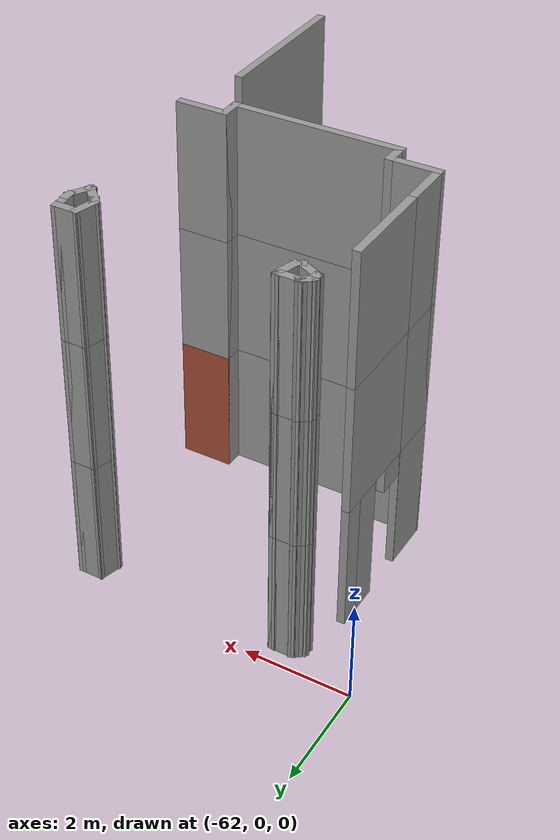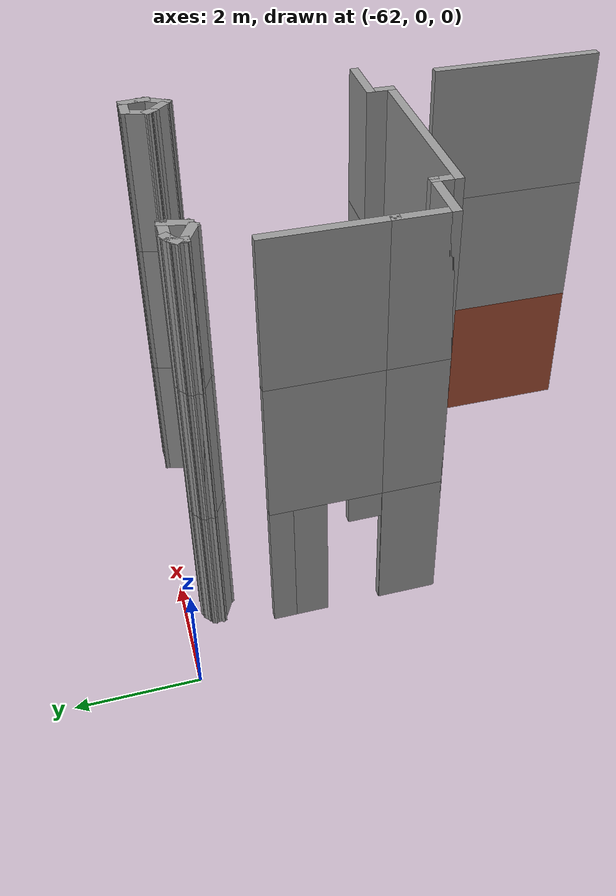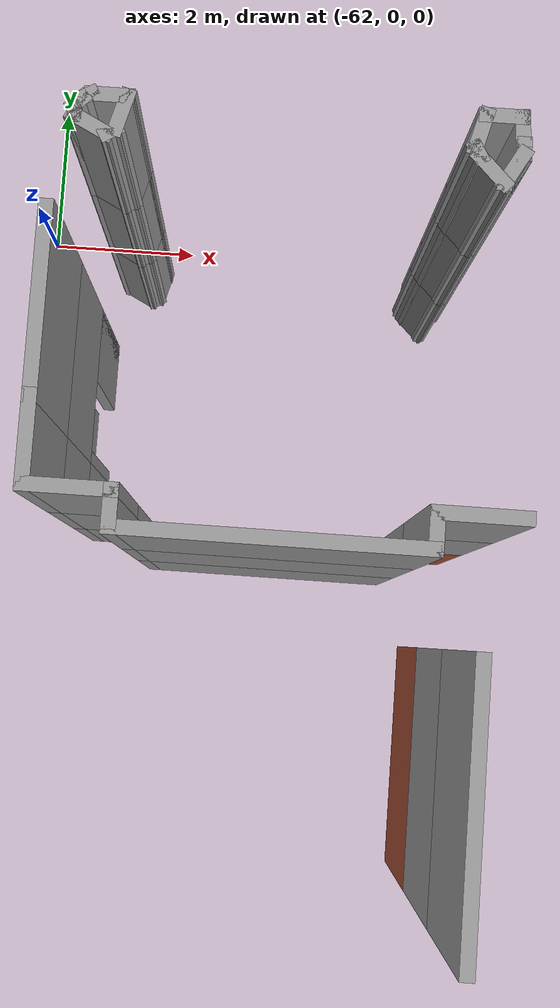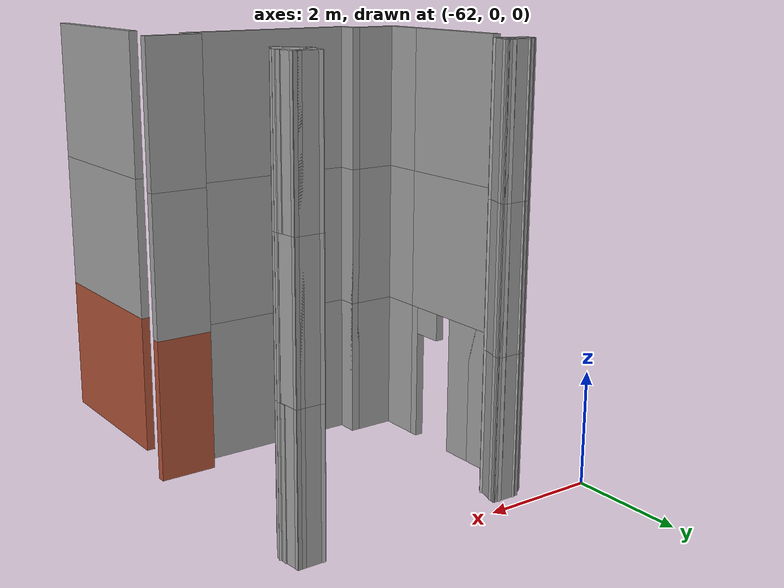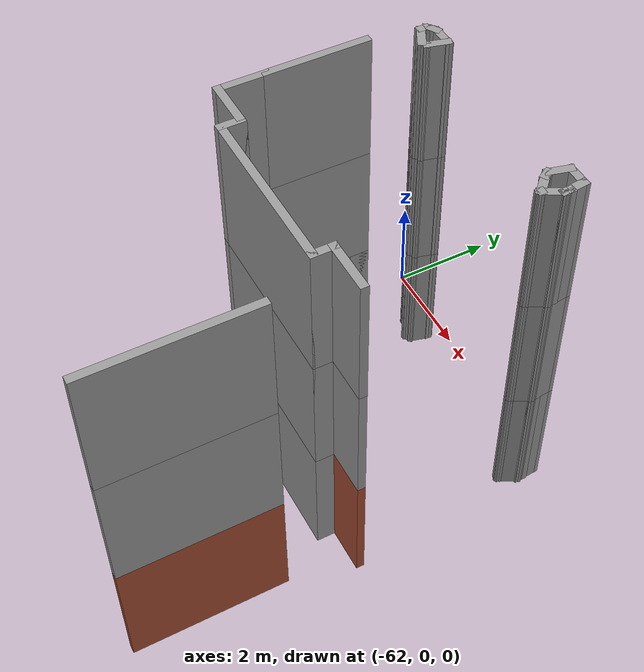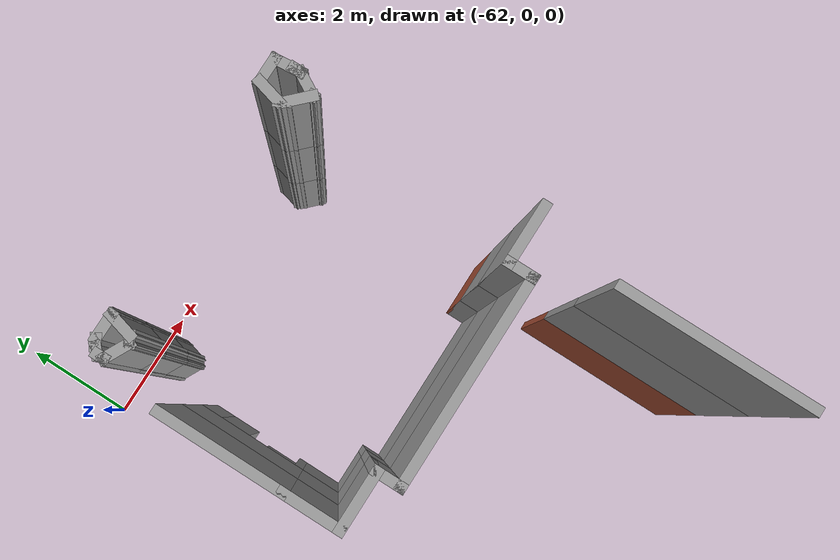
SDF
<sdf version="1.7">
 <model name="mapagazebo">
  <pose>-4.67869 9.01252 0 0 -0 0</pose>
  <link name="Wall_100">
   <collision name="Wall_100_Collision">
    <geometry><box><size>0.5 0.15 2.5</size></box></geometry>
    <pose>0 0 1.25 0 -0 0</pose>
   </collision>
   <visual name="Wall_100_Visual">
    <pose>0 0 1.25 0 -0 0</pose>
    <geometry><box><size>0.5 0.15 2.5</size></box></geometry>
    <material>
     <script><uri>file://media/materials/scripts/gazebo.material</uri><name>Gazebo/Grey</name></script>
     <ambient>1 1 1 1</ambient>
    </material>
    <meta><layer>0</layer></meta>
   </visual>
   <pose>-55.5249 -13.3911 0 0 -0 1.5708</pose>
  </link>
  <link name="Wall_101">
   <collision name="Wall_101_Collision">
    <geometry><box><size>1 0.15 2.5</size></box></geometry>
    <pose>0 0 1.25 0 -0 0</pose>
   </collision>
   <visual name="Wall_101_Visual">
    <pose>0 0 1.25 0 -0 0</pose>
    <geometry><box><size>1 0.15 2.5</size></box></geometry>
    <material>
     <script><uri>file://media/materials/scripts/gazebo.material</uri><name>Gazebo/Grey</name></script>
     <ambient>1 1 1 1</ambient>
    </material>
    <meta><layer>0</layer></meta>
   </visual>
   <pose>-55.9499 -13.2161 0 0 -0 3.14159</pose>
  </link>
  <link name="Wall_102">
   <collision name="Wall_102_Collision">
    <geometry><box><size>1 0.15 2.5</size></box></geometry>
    <pose>0 0 1.25 0 -0 0</pose>
   </collision>
   <visual name="Wall_102_Visual">
    <pose>0 0 1.25 0 -0 0</pose>
    <geometry><box><size>1 0.15 2.5</size></box></geometry>
    <material>
     <script><uri>file://media/materials/scripts/gazebo.material</uri><name>Gazebo/Grey</name></script>
     <ambient>1 1 1 1</ambient>
    </material>
    <meta><layer>0</layer></meta>
   </visual>
   <pose>-56.3749 -12.7911 0 0 -0 1.5708</pose>
  </link>
  <link name="Wall_103">
   <pose>-56.3749 -11.4411 0 0 -0 1.5708</pose>
   <visual name="Wall_103_Visual_0">
    <pose>-0.92124 0 1.25 0 -0 0</pose>
    <geometry><box><size>0.157519 0.15 2.5</size></box></geometry>
    <material>
     <script><uri>file://media/materials/scripts/gazebo.material</uri><name>Gazebo/Grey</name></script>
     <ambient>1 1 1 1</ambient>
    </material>
    <meta><layer>0</layer></meta>
   </visual>
   <collision name="Wall_103_Collision_0">
    <geometry><box><size>0.157519 0.15 2.5</size></box></geometry>
    <pose>-0.92124 0 1.25 0 -0 0</pose>
   </collision>
   <visual name="Wall_103_Visual_1">
    <pose>0.52876 0 1.25 0 -0 0</pose>
    <geometry><box><size>0.942481 0.15 2.5</size></box></geometry>
    <material>
     <script><uri>file://media/materials/scripts/gazebo.material</uri><name>Gazebo/Grey</name></script>
     <ambient>1 1 1 1</ambient>
    </material>
    <meta><layer>0</layer></meta>
   </visual>
   <collision name="Wall_103_Collision_1">
    <geometry><box><size>0.942481 0.15 2.5</size></box></geometry>
    <pose>0.52876 0 1.25 0 -0 0</pose>
   </collision>
   <visual name="Wall_103_Visual_2">
    <pose>0.804239 0 1.25 0 -0 0</pose>
    <geometry><box><size>0.391522 0.15 2.5</size></box></geometry>
    <material>
     <script><uri>file://media/materials/scripts/gazebo.material</uri><name>Gazebo/Grey</name></script>
     <ambient>1 1 1 1</ambient>
    </material>
    <meta><layer>0</layer></meta>
   </visual>
   <collision name="Wall_103_Collision_2">
    <geometry><box><size>0.391522 0.15 2.5</size></box></geometry>
    <pose>0.804239 0 1.25 0 -0 0</pose>
   </collision>
   <visual name="Wall_103_Visual_3">
    <pose>-0.567001 0 2.25 0 -0 0</pose>
    <geometry><box><size>0.550959 0.15 0.5</size></box></geometry>
    <material>
     <script><uri>file://media/materials/scripts/gazebo.material</uri><name>Gazebo/Grey</name></script>
     <ambient>1 1 1 1</ambient>
    </material>
    <meta><layer>0</layer></meta>
   </visual>
   <collision name="Wall_103_Collision_3">
    <geometry><box><size>0.550959 0.15 0.5</size></box></geometry>
    <pose>-0.567001 0 2.25 0 -0 0</pose>
   </collision>
  </link>
  <link name="Wall_1045">
   <collision name="Wall_1045_Collision">
    <geometry><box><size>0.25 0.15 2.5</size></box></geometry>
    <pose>0 0 1.25 0 -0 0</pose>
   </collision>
   <visual name="Wall_1045_Visual">
    <pose>0 0 1.25 0 -0 0</pose>
    <geometry><box><size>0.25 0.15 2.5</size></box></geometry>
    <material>
     <script><uri>file://media/materials/scripts/gazebo.material</uri><name>Gazebo/Grey</name></script>
     <ambient>1 1 1 1</ambient>
    </material>
    <meta><layer>1</layer></meta>
   </visual>
   <pose>-56.1822 -9.53536 2.5 0 -0 1.5708</pose>
  </link>
  <link name="Wall_1046">
   <collision name="Wall_1046_Collision">
    <geometry><box><size>0.25 0.15 2.5</size></box></geometry>
    <pose>0 0 1.25 0 -0 0</pose>
   </collision>
   <visual name="Wall_1046_Visual">
    <pose>0 0 1.25 0 -0 0</pose>
    <geometry><box><size>0.25 0.15 2.5</size></box></geometry>
    <material>
     <script><uri>file://media/materials/scripts/gazebo.material</uri><name>Gazebo/Grey</name></script>
     <ambient>1 1 1 1</ambient>
    </material>
    <meta><layer>1</layer></meta>
   </visual>
   <pose>-56.1468 -9.45001 2.5 0 -0 0.785398</pose>
  </link>
  <link name="Wall_1047">
   <collision name="Wall_1047_Collision">
    <geometry><box><size>0.25 0.15 2.5</size></box></geometry>
    <pose>0 0 1.25 0 -0 0</pose>
   </collision>
   <visual name="Wall_1047_Visual">
    <pose>0 0 1.25 0 -0 0</pose>
    <geometry><box><size>0.25 0.15 2.5</size></box></geometry>
    <material>
     <script><uri>file://media/materials/scripts/gazebo.material</uri><name>Gazebo/Grey</name></script>
     <ambient>1 1 1 1</ambient>
    </material>
    <meta><layer>1</layer></meta>
   </visual>
   <pose>-56.0682 -9.38965 2.5 0 -0 0.523599</pose>
  </link>
  <link name="Wall_1048">
   <collision name="Wall_1048_Collision">
    <geometry><box><size>0.5 0.15 2.5</size></box></geometry>
    <pose>0 0 1.25 0 -0 0</pose>
   </collision>
   <visual name="Wall_1048_Visual">
    <pose>0 0 1.25 0 -0 0</pose>
    <geometry><box><size>0.5 0.15 2.5</size></box></geometry>
    <material>
     <script><uri>file://media/materials/scripts/gazebo.material</uri><name>Gazebo/Grey</name></script>
     <ambient>1 1 1 1</ambient>
    </material>
    <meta><layer>1</layer></meta>
   </visual>
   <pose>-55.8499 -9.36465 2.5 0 -0 0</pose>
  </link>
  <link name="Wall_1049">
   <collision name="Wall_1049_Collision">
    <geometry><box><size>0.15 0.15 2.5</size></box></geometry>
    <pose>0 0 1.25 0 -0 0</pose>
   </collision>
   <visual name="Wall_1049_Visual">
    <pose>0 0 1.25 0 -0 0</pose>
    <geometry><box><size>0.15 0.15 2.5</size></box></geometry>
    <material>
     <script><uri>file://media/materials/scripts/gazebo.material</uri><name>Gazebo/Grey</name></script>
     <ambient>1 1 1 1</ambient>
    </material>
    <meta><layer>1</layer></meta>
   </visual>
   <pose>-55.6749 -9.36465 2.5 0 -0 0</pose>
  </link>
  <link name="Wall_1050">
   <collision name="Wall_1050_Collision">
    <geometry><box><size>0.5 0.15 2.5</size></box></geometry>
    <pose>0 0 1.25 0 -0 0</pose>
   </collision>
   <visual name="Wall_1050_Visual">
    <pose>0 0 1.25 0 -0 0</pose>
    <geometry><box><size>0.5 0.15 2.5</size></box></geometry>
    <material>
     <script><uri>file://media/materials/scripts/gazebo.material</uri><name>Gazebo/Grey</name></script>
     <ambient>1 1 1 1</ambient>
    </material>
    <meta><layer>1</layer></meta>
   </visual>
   <pose>-55.7202 -9.53369 2.5 0 -0 -1.8326</pose>
  </link>
  <link name="Wall_1051">
   <collision name="Wall_1051_Collision">
    <geometry><box><size>0.25 0.15 2.5</size></box></geometry>
    <pose>0 0 1.25 0 -0 0</pose>
   </collision>
   <visual name="Wall_1051_Visual">
    <pose>0 0 1.25 0 -0 0</pose>
    <geometry><box><size>0.25 0.15 2.5</size></box></geometry>
    <material>
     <script><uri>file://media/materials/scripts/gazebo.material</uri><name>Gazebo/Grey</name></script>
     <ambient>1 1 1 1</ambient>
    </material>
    <meta><layer>1</layer></meta>
   </visual>
   <pose>-55.8088 -9.72772 2.5 0 -0 -2.61799</pose>
  </link>
  <link name="Wall_1052">
   <collision name="Wall_1052_Collision">
    <geometry><box><size>0.520125 0.15 2.5</size></box></geometry>
    <pose>0 0 1.25 0 -0 0</pose>
   </collision>
   <visual name="Wall_1052_Visual">
    <pose>0 0 1.25 0 -0 0</pose>
    <geometry><box><size>0.520125 0.15 2.5</size></box></geometry>
    <material>
     <script><uri>file://media/materials/scripts/gazebo.material</uri><name>Gazebo/Grey</name></script>
     <ambient>1 1 1 1</ambient>
    </material>
    <meta><layer>1</layer></meta>
   </visual>
   <pose>-56.0171 -9.66904 2.5 0 -0 2.67238</pose>
  </link>
  <link name="Wall_1053">
   <collision name="Wall_1053_Collision">
    <geometry><box><size>0.15 0.15 2.5</size></box></geometry>
    <pose>0 0 1.25 0 -0 0</pose>
   </collision>
   <visual name="Wall_1053_Visual">
    <pose>0 0 1.25 0 -0 0</pose>
    <geometry><box><size>0.15 0.15 2.5</size></box></geometry>
    <material>
     <script><uri>file://media/materials/scripts/gazebo.material</uri><name>Gazebo/Grey</name></script>
     <ambient>1 1 1 1</ambient>
    </material>
    <meta><layer>1</layer></meta>
   </visual>
   <pose>-56.1822 -9.58536 2.5 0 -0 0</pose>
  </link>
  <link name="Wall_1464">
   <collision name="Wall_1464_Collision">
    <geometry><box><size>3 0.15 2.5</size></box></geometry>
    <pose>0 0 1.25 0 -0 0</pose>
   </collision>
   <visual name="Wall_1464_Visual">
    <pose>0 0 1.25 0 -0 0</pose>
    <geometry><box><size>3 0.15 2.5</size></box></geometry>
    <material>
     <script><uri>file://media/materials/scripts/gazebo.material</uri><name>Gazebo/Grey</name></script>
     <ambient>1 1 1 1</ambient>
    </material>
    <meta><layer>2</layer></meta>
   </visual>
   <pose>-51.9249 -15.9911 5 0 -0 1.5708</pose>
  </link>
  <link name="Wall_1467">
   <collision name="Wall_1467_Collision">
    <geometry><box><size>1 0.15 2.5</size></box></geometry>
    <pose>0 0 1.25 0 -0 0</pose>
   </collision>
   <visual name="Wall_1467_Visual">
    <pose>0 0 1.25 0 -0 0</pose>
    <geometry><box><size>1 0.15 2.5</size></box></geometry>
    <material>
     <script><uri>file://media/materials/scripts/gazebo.material</uri><name>Gazebo/Grey</name></script>
     <ambient>1 1 1 1</ambient>
    </material>
    <meta><layer>2</layer></meta>
   </visual>
   <pose>-51.9999 -13.2161 5 0 -0 3.14159</pose>
  </link>
  <link name="Wall_1468">
   <collision name="Wall_1468_Collision">
    <geometry><box><size>0.5 0.15 2.5</size></box></geometry>
    <pose>0 0 1.25 0 -0 0</pose>
   </collision>
   <visual name="Wall_1468_Visual">
    <pose>0 0 1.25 0 -0 0</pose>
    <geometry><box><size>0.5 0.15 2.5</size></box></geometry>
    <material>
     <script><uri>file://media/materials/scripts/gazebo.material</uri><name>Gazebo/Grey</name></script>
     <ambient>1 1 1 1</ambient>
    </material>
    <meta><layer>2</layer></meta>
   </visual>
   <pose>-52.4249 -13.3911 5 0 -0 -1.5708</pose>
  </link>
  <link name="Wall_1469">
   <collision name="Wall_1469_Collision">
    <geometry><box><size>3.25 0.15 2.5</size></box></geometry>
    <pose>0 0 1.25 0 -0 0</pose>
   </collision>
   <visual name="Wall_1469_Visual">
    <pose>0 0 1.25 0 -0 0</pose>
    <geometry><box><size>3.25 0.15 2.5</size></box></geometry>
    <material>
     <script><uri>file://media/materials/scripts/gazebo.material</uri><name>Gazebo/Grey</name></script>
     <ambient>1 1 1 1</ambient>
    </material>
    <meta><layer>2</layer></meta>
   </visual>
   <pose>-53.9749 -13.5661 5 0 -0 3.14159</pose>
  </link>
  <link name="Wall_1470">
   <collision name="Wall_1470_Collision">
    <geometry><box><size>0.5 0.15 2.5</size></box></geometry>
    <pose>0 0 1.25 0 -0 0</pose>
   </collision>
   <visual name="Wall_1470_Visual">
    <pose>0 0 1.25 0 -0 0</pose>
    <geometry><box><size>0.5 0.15 2.5</size></box></geometry>
    <material>
     <script><uri>file://media/materials/scripts/gazebo.material</uri><name>Gazebo/Grey</name></script>
     <ambient>1 1 1 1</ambient>
    </material>
    <meta><layer>2</layer></meta>
   </visual>
   <pose>-55.5249 -13.3911 5 0 -0 1.5708</pose>
  </link>
  <link name="Wall_1471">
   <collision name="Wall_1471_Collision">
    <geometry><box><size>1 0.15 2.5</size></box></geometry>
    <pose>0 0 1.25 0 -0 0</pose>
   </collision>
   <visual name="Wall_1471_Visual">
    <pose>0 0 1.25 0 -0 0</pose>
    <geometry><box><size>1 0.15 2.5</size></box></geometry>
    <material>
     <script><uri>file://media/materials/scripts/gazebo.material</uri><name>Gazebo/Grey</name></script>
     <ambient>1 1 1 1</ambient>
    </material>
    <meta><layer>2</layer></meta>
   </visual>
   <pose>-55.9499 -13.2161 5 0 -0 3.14159</pose>
  </link>
  <link name="Wall_1472">
   <collision name="Wall_1472_Collision">
    <geometry><box><size>1 0.15 2.5</size></box></geometry>
    <pose>0 0 1.25 0 -0 0</pose>
   </collision>
   <visual name="Wall_1472_Visual">
    <pose>0 0 1.25 0 -0 0</pose>
    <geometry><box><size>1 0.15 2.5</size></box></geometry>
    <material>
     <script><uri>file://media/materials/scripts/gazebo.material</uri><name>Gazebo/Grey</name></script>
     <ambient>1 1 1 1</ambient>
    </material>
    <meta><layer>2</layer></meta>
   </visual>
   <pose>-56.3749 -12.7911 5 0 -0 1.5708</pose>
  </link>
  <link name="Wall_1473">
   <collision name="Wall_1473_Collision">
    <geometry><box><size>2 0.15 2.5</size></box></geometry>
    <pose>0 0 1.25 0 -0 0</pose>
   </collision>
   <visual name="Wall_1473_Visual">
    <pose>0 0 1.25 0 -0 0</pose>
    <geometry><box><size>2 0.15 2.5</size></box></geometry>
    <material>
     <script><uri>file://media/materials/scripts/gazebo.material</uri><name>Gazebo/Grey</name></script>
     <ambient>1 1 1 1</ambient>
    </material>
    <meta><layer>2</layer></meta>
   </visual>
   <pose>-56.3749 -11.4411 5 0 -0 1.5708</pose>
  </link>
  <link name="Wall_1565">
   <collision name="Wall_1565_Collision">
    <geometry><box><size>0.5 0.15 2.5</size></box></geometry>
    <pose>0 0 1.25 0 -0 0</pose>
   </collision>
   <visual name="Wall_1565_Visual">
    <pose>0 0 1.25 0 -0 0</pose>
    <geometry><box><size>0.5 0.15 2.5</size></box></geometry>
    <material>
     <script><uri>file://media/materials/scripts/gazebo.material</uri><name>Gazebo/Grey</name></script>
     <ambient>1 1 1 1</ambient>
    </material>
    <meta><layer>2</layer></meta>
   </visual>
   <pose>-52.2158 -9.47838 5 0 -0 -1.8326</pose>
  </link>
  <link name="Wall_1566">
   <collision name="Wall_1566_Collision">
    <geometry><box><size>0.25 0.15 2.5</size></box></geometry>
    <pose>0 0 1.25 0 -0 0</pose>
   </collision>
   <visual name="Wall_1566_Visual">
    <pose>0 0 1.25 0 -0 0</pose>
    <geometry><box><size>0.25 0.15 2.5</size></box></geometry>
    <material>
     <script><uri>file://media/materials/scripts/gazebo.material</uri><name>Gazebo/Grey</name></script>
     <ambient>1 1 1 1</ambient>
    </material>
    <meta><layer>2</layer></meta>
   </visual>
   <pose>-52.2361 -9.69072 5 0 -0 -1.0472</pose>
  </link>
  <link name="Wall_1567">
   <collision name="Wall_1567_Collision">
    <geometry><box><size>0.5 0.15 2.5</size></box></geometry>
    <pose>0 0 1.25 0 -0 0</pose>
   </collision>
   <visual name="Wall_1567_Visual">
    <pose>0 0 1.25 0 -0 0</pose>
    <geometry><box><size>0.5 0.15 2.5</size></box></geometry>
    <material>
     <script><uri>file://media/materials/scripts/gazebo.material</uri><name>Gazebo/Grey</name></script>
     <ambient>1 1 1 1</ambient>
    </material>
    <meta><layer>2</layer></meta>
   </visual>
   <pose>-52.0874 -9.85776 5 0 -0 -0.785398</pose>
  </link>
  <link name="Wall_1568">
   <collision name="Wall_1568_Collision">
    <geometry><box><size>0.15 0.15 2.5</size></box></geometry>
    <pose>0 0 1.25 0 -0 0</pose>
   </collision>
   <visual name="Wall_1568_Visual">
    <pose>0 0 1.25 0 -0 0</pose>
    <geometry><box><size>0.15 0.15 2.5</size></box></geometry>
    <material>
     <script><uri>file://media/materials/scripts/gazebo.material</uri><name>Gazebo/Grey</name></script>
     <ambient>1 1 1 1</ambient>
    </material>
    <meta><layer>2</layer></meta>
   </visual>
   <pose>-51.9636 -9.98151 5 0 -0 0</pose>
  </link>
  <link name="Wall_1569">
   <collision name="Wall_1569_Collision">
    <geometry><box><size>0.5 0.15 2.5</size></box></geometry>
    <pose>0 0 1.25 0 -0 0</pose>
   </collision>
   <visual name="Wall_1569_Visual">
    <pose>0 0 1.25 0 -0 0</pose>
    <geometry><box><size>0.5 0.15 2.5</size></box></geometry>
    <material>
     <script><uri>file://media/materials/scripts/gazebo.material</uri><name>Gazebo/Grey</name></script>
     <ambient>1 1 1 1</ambient>
    </material>
    <meta><layer>2</layer></meta>
   </visual>
   <pose>-51.8761 -9.82995 5 0 -0 1.0472</pose>
  </link>
  <link name="Wall_1570">
   <collision name="Wall_1570_Collision">
    <geometry><box><size>0.25 0.15 2.5</size></box></geometry>
    <pose>0 0 1.25 0 -0 0</pose>
   </collision>
   <visual name="Wall_1570_Visual">
    <pose>0 0 1.25 0 -0 0</pose>
    <geometry><box><size>0.25 0.15 2.5</size></box></geometry>
    <material>
     <script><uri>file://media/materials/scripts/gazebo.material</uri><name>Gazebo/Grey</name></script>
     <ambient>1 1 1 1</ambient>
    </material>
    <meta><layer>2</layer></meta>
   </visual>
   <pose>-51.7886 -9.6284 5 0 -0 1.5708</pose>
  </link>
  <link name="Wall_1571">
   <collision name="Wall_1571_Collision">
    <geometry><box><size>0.5 0.15 2.5</size></box></geometry>
    <pose>0 0 1.25 0 -0 0</pose>
   </collision>
   <visual name="Wall_1571_Visual">
    <pose>0 0 1.25 0 -0 0</pose>
    <geometry><box><size>0.5 0.15 2.5</size></box></geometry>
    <material>
     <script><uri>file://media/materials/scripts/gazebo.material</uri><name>Gazebo/Grey</name></script>
     <ambient>1 1 1 1</ambient>
    </material>
    <meta><layer>2</layer></meta>
   </visual>
   <pose>-51.9955 -9.30934 5 0 -0 0</pose>
  </link>
  <link name="Wall_1572">
   <collision name="Wall_1572_Collision">
    <geometry><box><size>0.15 0.15 2.5</size></box></geometry>
    <pose>0 0 1.25 0 -0 0</pose>
   </collision>
   <visual name="Wall_1572_Visual">
    <pose>0 0 1.25 0 -0 0</pose>
    <geometry><box><size>0.15 0.15 2.5</size></box></geometry>
    <material>
     <script><uri>file://media/materials/scripts/gazebo.material</uri><name>Gazebo/Grey</name></script>
     <ambient>1 1 1 1</ambient>
    </material>
    <meta><layer>2</layer></meta>
   </visual>
   <pose>-51.8205 -9.30934 5 0 -0 0</pose>
  </link>
  <link name="Wall_1573">
   <collision name="Wall_1573_Collision">
    <geometry><box><size>0.520431 0.15 2.5</size></box></geometry>
    <pose>0 0 1.25 0 -0 0</pose>
   </collision>
   <visual name="Wall_1573_Visual">
    <pose>0 0 1.25 0 -0 0</pose>
    <geometry><box><size>0.520431 0.15 2.5</size></box></geometry>
    <material>
     <script><uri>file://media/materials/scripts/gazebo.material</uri><name>Gazebo/Grey</name></script>
     <ambient>1 1 1 1</ambient>
    </material>
    <meta><layer>2</layer></meta>
   </visual>
   <pose>-51.8046 -9.49387 5 0 -0 -1.48457</pose>
  </link>
  <link name="Wall_1574">
   <collision name="Wall_1574_Collision">
    <geometry><box><size>0.15 0.15 2.5</size></box></geometry>
    <pose>0 0 1.25 0 -0 0</pose>
   </collision>
   <visual name="Wall_1574_Visual">
    <pose>0 0 1.25 0 -0 0</pose>
    <geometry><box><size>0.15 0.15 2.5</size></box></geometry>
    <material>
     <script><uri>file://media/materials/scripts/gazebo.material</uri><name>Gazebo/Grey</name></script>
     <ambient>1 1 1 1</ambient>
    </material>
    <meta><layer>2</layer></meta>
   </visual>
   <pose>-51.7886 -9.6784 5 0 -0 0</pose>
  </link>
  <link name="Wall_1669">
   <collision name="Wall_1669_Collision">
    <geometry><box><size>0.25 0.15 2.5</size></box></geometry>
    <pose>0 0 1.25 0 -0 0</pose>
   </collision>
   <visual name="Wall_1669_Visual">
    <pose>0 0 1.25 0 -0 0</pose>
    <geometry><box><size>0.25 0.15 2.5</size></box></geometry>
    <material>
     <script><uri>file://media/materials/scripts/gazebo.material</uri><name>Gazebo/Grey</name></script>
     <ambient>1 1 1 1</ambient>
    </material>
    <meta><layer>2</layer></meta>
   </visual>
   <pose>-56.1822 -9.53536 5 0 -0 1.5708</pose>
  </link>
  <link name="Wall_1670">
   <collision name="Wall_1670_Collision">
    <geometry><box><size>0.25 0.15 2.5</size></box></geometry>
    <pose>0 0 1.25 0 -0 0</pose>
   </collision>
   <visual name="Wall_1670_Visual">
    <pose>0 0 1.25 0 -0 0</pose>
    <geometry><box><size>0.25 0.15 2.5</size></box></geometry>
    <material>
     <script><uri>file://media/materials/scripts/gazebo.material</uri><name>Gazebo/Grey</name></script>
     <ambient>1 1 1 1</ambient>
    </material>
    <meta><layer>2</layer></meta>
   </visual>
   <pose>-56.1468 -9.45001 5 0 -0 0.785398</pose>
  </link>
  <link name="Wall_1671">
   <collision name="Wall_1671_Collision">
    <geometry><box><size>0.25 0.15 2.5</size></box></geometry>
    <pose>0 0 1.25 0 -0 0</pose>
   </collision>
   <visual name="Wall_1671_Visual">
    <pose>0 0 1.25 0 -0 0</pose>
    <geometry><box><size>0.25 0.15 2.5</size></box></geometry>
    <material>
     <script><uri>file://media/materials/scripts/gazebo.material</uri><name>Gazebo/Grey</name></script>
     <ambient>1 1 1 1</ambient>
    </material>
    <meta><layer>2</layer></meta>
   </visual>
   <pose>-56.0682 -9.38965 5 0 -0 0.523599</pose>
  </link>
  <link name="Wall_1672">
   <collision name="Wall_1672_Collision">
    <geometry><box><size>0.5 0.15 2.5</size></box></geometry>
    <pose>0 0 1.25 0 -0 0</pose>
   </collision>
   <visual name="Wall_1672_Visual">
    <pose>0 0 1.25 0 -0 0</pose>
    <geometry><box><size>0.5 0.15 2.5</size></box></geometry>
    <material>
     <script><uri>file://media/materials/scripts/gazebo.material</uri><name>Gazebo/Grey</name></script>
     <ambient>1 1 1 1</ambient>
    </material>
    <meta><layer>2</layer></meta>
   </visual>
   <pose>-55.8499 -9.36465 5 0 -0 0</pose>
  </link>
  <link name="Wall_1673">
   <collision name="Wall_1673_Collision">
    <geometry><box><size>0.15 0.15 2.5</size></box></geometry>
    <pose>0 0 1.25 0 -0 0</pose>
   </collision>
   <visual name="Wall_1673_Visual">
    <pose>0 0 1.25 0 -0 0</pose>
    <geometry><box><size>0.15 0.15 2.5</size></box></geometry>
    <material>
     <script><uri>file://media/materials/scripts/gazebo.material</uri><name>Gazebo/Grey</name></script>
     <ambient>1 1 1 1</ambient>
    </material>
    <meta><layer>2</layer></meta>
   </visual>
   <pose>-55.6749 -9.36465 5 0 -0 0</pose>
  </link>
  <link name="Wall_1674">
   <collision name="Wall_1674_Collision">
    <geometry><box><size>0.5 0.15 2.5</size></box></geometry>
    <pose>0 0 1.25 0 -0 0</pose>
   </collision>
   <visual name="Wall_1674_Visual">
    <pose>0 0 1.25 0 -0 0</pose>
    <geometry><box><size>0.5 0.15 2.5</size></box></geometry>
    <material>
     <script><uri>file://media/materials/scripts/gazebo.material</uri><name>Gazebo/Grey</name></script>
     <ambient>1 1 1 1</ambient>
    </material>
    <meta><layer>2</layer></meta>
   </visual>
   <pose>-55.7202 -9.53369 5 0 -0 -1.8326</pose>
  </link>
  <link name="Wall_1675">
   <collision name="Wall_1675_Collision">
    <geometry><box><size>0.25 0.15 2.5</size></box></geometry>
    <pose>0 0 1.25 0 -0 0</pose>
   </collision>
   <visual name="Wall_1675_Visual">
    <pose>0 0 1.25 0 -0 0</pose>
    <geometry><box><size>0.25 0.15 2.5</size></box></geometry>
    <material>
     <script><uri>file://media/materials/scripts/gazebo.material</uri><name>Gazebo/Grey</name></script>
     <ambient>1 1 1 1</ambient>
    </material>
    <meta><layer>2</layer></meta>
   </visual>
   <pose>-55.8088 -9.72772 5 0 -0 -2.61799</pose>
  </link>
  <link name="Wall_1676">
   <collision name="Wall_1676_Collision">
    <geometry><box><size>0.520125 0.15 2.5</size></box></geometry>
    <pose>0 0 1.25 0 -0 0</pose>
   </collision>
   <visual name="Wall_1676_Visual">
    <pose>0 0 1.25 0 -0 0</pose>
    <geometry><box><size>0.520125 0.15 2.5</size></box></geometry>
    <material>
     <script><uri>file://media/materials/scripts/gazebo.material</uri><name>Gazebo/Grey</name></script>
     <ambient>1 1 1 1</ambient>
    </material>
    <meta><layer>2</layer></meta>
   </visual>
   <pose>-56.0171 -9.66904 5 0 -0 2.67238</pose>
  </link>
  <link name="Wall_1677">
   <collision name="Wall_1677_Collision">
    <geometry><box><size>0.15 0.15 2.5</size></box></geometry>
    <pose>0 0 1.25 0 -0 0</pose>
   </collision>
   <visual name="Wall_1677_Visual">
    <pose>0 0 1.25 0 -0 0</pose>
    <geometry><box><size>0.15 0.15 2.5</size></box></geometry>
    <material>
     <script><uri>file://media/materials/scripts/gazebo.material</uri><name>Gazebo/Grey</name></script>
     <ambient>1 1 1 1</ambient>
    </material>
    <meta><layer>2</layer></meta>
   </visual>
   <pose>-56.1822 -9.58536 5 0 -0 0</pose>
  </link>
  <link name="Wall_221">
   <collision name="Wall_221_Collision">
    <geometry><box><size>0.5 0.15 2.5</size></box></geometry>
    <pose>0 0 1.25 0 -0 0</pose>
   </collision>
   <visual name="Wall_221_Visual">
    <pose>0 0 1.25 0 -0 0</pose>
    <geometry><box><size>0.5 0.15 2.5</size></box></geometry>
    <material>
     <script><uri>file://media/materials/scripts/gazebo.material</uri><name>Gazebo/Grey</name></script>
     <ambient>1 1 1 1</ambient>
    </material>
    <meta><layer>0</layer></meta>
   </visual>
   <pose>-52.2158 -9.47838 0 0 -0 -1.8326</pose>
  </link>
  <link name="Wall_222">
   <collision name="Wall_222_Collision">
    <geometry><box><size>0.25 0.15 2.5</size></box></geometry>
    <pose>0 0 1.25 0 -0 0</pose>
   </collision>
   <visual name="Wall_222_Visual">
    <pose>0 0 1.25 0 -0 0</pose>
    <geometry><box><size>0.25 0.15 2.5</size></box></geometry>
    <material>
     <script><uri>file://media/materials/scripts/gazebo.material</uri><name>Gazebo/Grey</name></script>
     <ambient>1 1 1 1</ambient>
    </material>
    <meta><layer>0</layer></meta>
   </visual>
   <pose>-52.2361 -9.69072 0 0 -0 -1.0472</pose>
  </link>
  <link name="Wall_223">
   <collision name="Wall_223_Collision">
    <geometry><box><size>0.5 0.15 2.5</size></box></geometry>
    <pose>0 0 1.25 0 -0 0</pose>
   </collision>
   <visual name="Wall_223_Visual">
    <pose>0 0 1.25 0 -0 0</pose>
    <geometry><box><size>0.5 0.15 2.5</size></box></geometry>
    <material>
     <script><uri>file://media/materials/scripts/gazebo.material</uri><name>Gazebo/Grey</name></script>
     <ambient>1 1 1 1</ambient>
    </material>
    <meta><layer>0</layer></meta>
   </visual>
   <pose>-52.0874 -9.85776 0 0 -0 -0.785398</pose>
  </link>
  <link name="Wall_224">
   <collision name="Wall_224_Collision">
    <geometry><box><size>0.15 0.15 2.5</size></box></geometry>
    <pose>0 0 1.25 0 -0 0</pose>
   </collision>
   <visual name="Wall_224_Visual">
    <pose>0 0 1.25 0 -0 0</pose>
    <geometry><box><size>0.15 0.15 2.5</size></box></geometry>
    <material>
     <script><uri>file://media/materials/scripts/gazebo.material</uri><name>Gazebo/Grey</name></script>
     <ambient>1 1 1 1</ambient>
    </material>
    <meta><layer>0</layer></meta>
   </visual>
   <pose>-51.9636 -9.98151 0 0 -0 0</pose>
  </link>
  <link name="Wall_225">
   <collision name="Wall_225_Collision">
    <geometry><box><size>0.5 0.15 2.5</size></box></geometry>
    <pose>0 0 1.25 0 -0 0</pose>
   </collision>
   <visual name="Wall_225_Visual">
    <pose>0 0 1.25 0 -0 0</pose>
    <geometry><box><size>0.5 0.15 2.5</size></box></geometry>
    <material>
     <script><uri>file://media/materials/scripts/gazebo.material</uri><name>Gazebo/Grey</name></script>
     <ambient>1 1 1 1</ambient>
    </material>
    <meta><layer>0</layer></meta>
   </visual>
   <pose>-51.8761 -9.82995 0 0 -0 1.0472</pose>
  </link>
  <link name="Wall_226">
   <collision name="Wall_226_Collision">
    <geometry><box><size>0.25 0.15 2.5</size></box></geometry>
    <pose>0 0 1.25 0 -0 0</pose>
   </collision>
   <visual name="Wall_226_Visual">
    <pose>0 0 1.25 0 -0 0</pose>
    <geometry><box><size>0.25 0.15 2.5</size></box></geometry>
    <material>
     <script><uri>file://media/materials/scripts/gazebo.material</uri><name>Gazebo/Grey</name></script>
     <ambient>1 1 1 1</ambient>
    </material>
    <meta><layer>0</layer></meta>
   </visual>
   <pose>-51.7886 -9.6284 0 0 -0 1.5708</pose>
  </link>
  <link name="Wall_228">
   <collision name="Wall_228_Collision">
    <geometry><box><size>0.5 0.15 2.5</size></box></geometry>
    <pose>0 0 1.25 0 -0 0</pose>
   </collision>
   <visual name="Wall_228_Visual">
    <pose>0 0 1.25 0 -0 0</pose>
    <geometry><box><size>0.5 0.15 2.5</size></box></geometry>
    <material>
     <script><uri>file://media/materials/scripts/gazebo.material</uri><name>Gazebo/Grey</name></script>
     <ambient>1 1 1 1</ambient>
    </material>
    <meta><layer>0</layer></meta>
   </visual>
   <pose>-51.9955 -9.30934 0 0 -0 0</pose>
  </link>
  <link name="Wall_229">
   <collision name="Wall_229_Collision">
    <geometry><box><size>0.15 0.15 2.5</size></box></geometry>
    <pose>0 0 1.25 0 -0 0</pose>
   </collision>
   <visual name="Wall_229_Visual">
    <pose>0 0 1.25 0 -0 0</pose>
    <geometry><box><size>0.15 0.15 2.5</size></box></geometry>
    <material>
     <script><uri>file://media/materials/scripts/gazebo.material</uri><name>Gazebo/Grey</name></script>
     <ambient>1 1 1 1</ambient>
    </material>
    <meta><layer>0</layer></meta>
   </visual>
   <pose>-51.8205 -9.30934 0 0 -0 0</pose>
  </link>
  <link name="Wall_230">
   <collision name="Wall_230_Collision">
    <geometry><box><size>0.520431 0.15 2.5</size></box></geometry>
    <pose>0 0 1.25 0 -0 0</pose>
   </collision>
   <visual name="Wall_230_Visual">
    <pose>0 0 1.25 0 -0 0</pose>
    <geometry><box><size>0.520431 0.15 2.5</size></box></geometry>
    <material>
     <script><uri>file://media/materials/scripts/gazebo.material</uri><name>Gazebo/Grey</name></script>
     <ambient>1 1 1 1</ambient>
    </material>
    <meta><layer>0</layer></meta>
   </visual>
   <pose>-51.8046 -9.49387 0 0 -0 -1.48457</pose>
  </link>
  <link name="Wall_231">
   <collision name="Wall_231_Collision">
    <geometry><box><size>0.15 0.15 2.5</size></box></geometry>
    <pose>0 0 1.25 0 -0 0</pose>
   </collision>
   <visual name="Wall_231_Visual">
    <pose>0 0 1.25 0 -0 0</pose>
    <geometry><box><size>0.15 0.15 2.5</size></box></geometry>
    <material>
     <script><uri>file://media/materials/scripts/gazebo.material</uri><name>Gazebo/Grey</name></script>
     <ambient>1 1 1 1</ambient>
    </material>
    <meta><layer>0</layer></meta>
   </visual>
   <pose>-51.7886 -9.6784 0 0 -0 0</pose>
  </link>
  <link name="Wall_336">
   <collision name="Wall_336_Collision">
    <geometry><box><size>0.25 0.15 2.5</size></box></geometry>
    <pose>0 0 1.25 0 -0 0</pose>
   </collision>
   <visual name="Wall_336_Visual">
    <pose>0 0 1.25 0 -0 0</pose>
    <geometry><box><size>0.25 0.15 2.5</size></box></geometry>
    <material>
     <script><uri>file://media/materials/scripts/gazebo.material</uri><name>Gazebo/Grey</name></script>
     <ambient>1 1 1 1</ambient>
    </material>
    <meta><layer>0</layer></meta>
   </visual>
   <pose>-56.1822 -9.53536 0 0 -0 1.5708</pose>
  </link>
  <link name="Wall_337">
   <collision name="Wall_337_Collision">
    <geometry><box><size>0.25 0.15 2.5</size></box></geometry>
    <pose>0 0 1.25 0 -0 0</pose>
   </collision>
   <visual name="Wall_337_Visual">
    <pose>0 0 1.25 0 -0 0</pose>
    <geometry><box><size>0.25 0.15 2.5</size></box></geometry>
    <material>
     <script><uri>file://media/materials/scripts/gazebo.material</uri><name>Gazebo/Grey</name></script>
     <ambient>1 1 1 1</ambient>
    </material>
    <meta><layer>0</layer></meta>
   </visual>
   <pose>-56.1468 -9.45001 0 0 -0 0.785398</pose>
  </link>
  <link name="Wall_338">
   <collision name="Wall_338_Collision">
    <geometry><box><size>0.25 0.15 2.5</size></box></geometry>
    <pose>0 0 1.25 0 -0 0</pose>
   </collision>
   <visual name="Wall_338_Visual">
    <pose>0 0 1.25 0 -0 0</pose>
    <geometry><box><size>0.25 0.15 2.5</size></box></geometry>
    <material>
     <script><uri>file://media/materials/scripts/gazebo.material</uri><name>Gazebo/Grey</name></script>
     <ambient>1 1 1 1</ambient>
    </material>
    <meta><layer>0</layer></meta>
   </visual>
   <pose>-56.0682 -9.38965 0 0 -0 0.523599</pose>
  </link>
  <link name="Wall_339">
   <collision name="Wall_339_Collision">
    <geometry><box><size>0.5 0.15 2.5</size></box></geometry>
    <pose>0 0 1.25 0 -0 0</pose>
   </collision>
   <visual name="Wall_339_Visual">
    <pose>0 0 1.25 0 -0 0</pose>
    <geometry><box><size>0.5 0.15 2.5</size></box></geometry>
    <material>
     <script><uri>file://media/materials/scripts/gazebo.material</uri><name>Gazebo/Grey</name></script>
     <ambient>1 1 1 1</ambient>
    </material>
    <meta><layer>0</layer></meta>
   </visual>
   <pose>-55.8499 -9.36465 0 0 -0 0</pose>
  </link>
  <link name="Wall_340">
   <collision name="Wall_340_Collision">
    <geometry><box><size>0.15 0.15 2.5</size></box></geometry>
    <pose>0 0 1.25 0 -0 0</pose>
   </collision>
   <visual name="Wall_340_Visual">
    <pose>0 0 1.25 0 -0 0</pose>
    <geometry><box><size>0.15 0.15 2.5</size></box></geometry>
    <material>
     <script><uri>file://media/materials/scripts/gazebo.material</uri><name>Gazebo/Grey</name></script>
     <ambient>1 1 1 1</ambient>
    </material>
    <meta><layer>0</layer></meta>
   </visual>
   <pose>-55.6749 -9.36465 0 0 -0 0</pose>
  </link>
  <link name="Wall_341">
   <collision name="Wall_341_Collision">
    <geometry><box><size>0.5 0.15 2.5</size></box></geometry>
    <pose>0 0 1.25 0 -0 0</pose>
   </collision>
   <visual name="Wall_341_Visual">
    <pose>0 0 1.25 0 -0 0</pose>
    <geometry><box><size>0.5 0.15 2.5</size></box></geometry>
    <material>
     <script><uri>file://media/materials/scripts/gazebo.material</uri><name>Gazebo/Grey</name></script>
     <ambient>1 1 1 1</ambient>
    </material>
    <meta><layer>0</layer></meta>
   </visual>
   <pose>-55.7202 -9.53369 0 0 -0 -1.8326</pose>
  </link>
  <link name="Wall_342">
   <collision name="Wall_342_Collision">
    <geometry><box><size>0.25 0.15 2.5</size></box></geometry>
    <pose>0 0 1.25 0 -0 0</pose>
   </collision>
   <visual name="Wall_342_Visual">
    <pose>0 0 1.25 0 -0 0</pose>
    <geometry><box><size>0.25 0.15 2.5</size></box></geometry>
    <material>
     <script><uri>file://media/materials/scripts/gazebo.material</uri><name>Gazebo/Grey</name></script>
     <ambient>1 1 1 1</ambient>
    </material>
    <meta><layer>0</layer></meta>
   </visual>
   <pose>-55.8088 -9.72772 0 0 -0 -2.61799</pose>
  </link>
  <link name="Wall_343">
   <collision name="Wall_343_Collision">
    <geometry><box><size>0.520125 0.15 2.5</size></box></geometry>
    <pose>0 0 1.25 0 -0 0</pose>
   </collision>
   <visual name="Wall_343_Visual">
    <pose>0 0 1.25 0 -0 0</pose>
    <geometry><box><size>0.520125 0.15 2.5</size></box></geometry>
    <material>
     <script><uri>file://media/materials/scripts/gazebo.material</uri><name>Gazebo/Grey</name></script>
     <ambient>1 1 1 1</ambient>
    </material>
    <meta><layer>0</layer></meta>
   </visual>
   <pose>-56.0171 -9.66904 0 0 -0 2.67238</pose>
  </link>
  <link name="Wall_344">
   <collision name="Wall_344_Collision">
    <geometry><box><size>0.15 0.15 2.5</size></box></geometry>
    <pose>0 0 1.25 0 -0 0</pose>
   </collision>
   <visual name="Wall_344_Visual">
    <pose>0 0 1.25 0 -0 0</pose>
    <geometry><box><size>0.15 0.15 2.5</size></box></geometry>
    <material>
     <script><uri>file://media/materials/scripts/gazebo.material</uri><name>Gazebo/Grey</name></script>
     <ambient>1 1 1 1</ambient>
    </material>
    <meta><layer>0</layer></meta>
   </visual>
   <pose>-56.1822 -9.58536 0 0 -0 0</pose>
  </link>
  <link name="Wall_840">
   <collision name="Wall_840_Collision">
    <geometry><box><size>3 0.15 2.5</size></box></geometry>
    <pose>0 0 1.25 0 -0 0</pose>
   </collision>
   <visual name="Wall_840_Visual">
    <pose>0 0 1.25 0 -0 0</pose>
    <geometry><box><size>3 0.15 2.5</size></box></geometry>
    <material>
     <script><uri>file://media/materials/scripts/gazebo.material</uri><name>Gazebo/Grey</name></script>
     <ambient>1 1 1 1</ambient>
    </material>
    <meta><layer>1</layer></meta>
   </visual>
   <pose>-51.9249 -15.9911 2.5 0 -0 1.5708</pose>
  </link>
  <link name="Wall_843">
   <collision name="Wall_843_Collision">
    <geometry><box><size>1 0.15 2.5</size></box></geometry>
    <pose>0 0 1.25 0 -0 0</pose>
   </collision>
   <visual name="Wall_843_Visual">
    <pose>0 0 1.25 0 -0 0</pose>
    <geometry><box><size>1 0.15 2.5</size></box></geometry>
    <material>
     <script><uri>file://media/materials/scripts/gazebo.material</uri><name>Gazebo/Grey</name></script>
     <ambient>1 1 1 1</ambient>
    </material>
    <meta><layer>1</layer></meta>
   </visual>
   <pose>-51.9999 -13.2161 2.5 0 -0 3.14159</pose>
  </link>
  <link name="Wall_844">
   <collision name="Wall_844_Collision">
    <geometry><box><size>0.5 0.15 2.5</size></box></geometry>
    <pose>0 0 1.25 0 -0 0</pose>
   </collision>
   <visual name="Wall_844_Visual">
    <pose>0 0 1.25 0 -0 0</pose>
    <geometry><box><size>0.5 0.15 2.5</size></box></geometry>
    <material>
     <script><uri>file://media/materials/scripts/gazebo.material</uri><name>Gazebo/Grey</name></script>
     <ambient>1 1 1 1</ambient>
    </material>
    <meta><layer>1</layer></meta>
   </visual>
   <pose>-52.4249 -13.3911 2.5 0 -0 -1.5708</pose>
  </link>
  <link name="Wall_845">
   <collision name="Wall_845_Collision">
    <geometry><box><size>3.25 0.15 2.5</size></box></geometry>
    <pose>0 0 1.25 0 -0 0</pose>
   </collision>
   <visual name="Wall_845_Visual">
    <pose>0 0 1.25 0 -0 0</pose>
    <geometry><box><size>3.25 0.15 2.5</size></box></geometry>
    <material>
     <script><uri>file://media/materials/scripts/gazebo.material</uri><name>Gazebo/Grey</name></script>
     <ambient>1 1 1 1</ambient>
    </material>
    <meta><layer>1</layer></meta>
   </visual>
   <pose>-53.9749 -13.5661 2.5 0 -0 3.14159</pose>
  </link>
  <link name="Wall_846">
   <collision name="Wall_846_Collision">
    <geometry><box><size>0.5 0.15 2.5</size></box></geometry>
    <pose>0 0 1.25 0 -0 0</pose>
   </collision>
   <visual name="Wall_846_Visual">
    <pose>0 0 1.25 0 -0 0</pose>
    <geometry><box><size>0.5 0.15 2.5</size></box></geometry>
    <material>
     <script><uri>file://media/materials/scripts/gazebo.material</uri><name>Gazebo/Grey</name></script>
     <ambient>1 1 1 1</ambient>
    </material>
    <meta><layer>1</layer></meta>
   </visual>
   <pose>-55.5249 -13.3911 2.5 0 -0 1.5708</pose>
  </link>
  <link name="Wall_847">
   <collision name="Wall_847_Collision">
    <geometry><box><size>1 0.15 2.5</size></box></geometry>
    <pose>0 0 1.25 0 -0 0</pose>
   </collision>
   <visual name="Wall_847_Visual">
    <pose>0 0 1.25 0 -0 0</pose>
    <geometry><box><size>1 0.15 2.5</size></box></geometry>
    <material>
     <script><uri>file://media/materials/scripts/gazebo.material</uri><name>Gazebo/Grey</name></script>
     <ambient>1 1 1 1</ambient>
    </material>
    <meta><layer>1</layer></meta>
   </visual>
   <pose>-55.9499 -13.2161 2.5 0 -0 3.14159</pose>
  </link>
  <link name="Wall_848">
   <collision name="Wall_848_Collision">
    <geometry><box><size>1 0.15 2.5</size></box></geometry>
    <pose>0 0 1.25 0 -0 0</pose>
   </collision>
   <visual name="Wall_848_Visual">
    <pose>0 0 1.25 0 -0 0</pose>
    <geometry><box><size>1 0.15 2.5</size></box></geometry>
    <material>
     <script><uri>file://media/materials/scripts/gazebo.material</uri><name>Gazebo/Grey</name></script>
     <ambient>1 1 1 1</ambient>
    </material>
    <meta><layer>1</layer></meta>
   </visual>
   <pose>-56.3749 -12.7911 2.5 0 -0 1.5708</pose>
  </link>
  <link name="Wall_849">
   <collision name="Wall_849_Collision">
    <geometry><box><size>2 0.15 2.5</size></box></geometry>
    <pose>0 0 1.25 0 -0 0</pose>
   </collision>
   <visual name="Wall_849_Visual">
    <pose>0 0 1.25 0 -0 0</pose>
    <geometry><box><size>2 0.15 2.5</size></box></geometry>
    <material>
     <script><uri>file://media/materials/scripts/gazebo.material</uri><name>Gazebo/Grey</name></script>
     <ambient>1 1 1 1</ambient>
    </material>
    <meta><layer>1</layer></meta>
   </visual>
   <pose>-56.3749 -11.4411 2.5 0 -0 1.5708</pose>
  </link>
  <link name="Wall_92">
   <collision name="Wall_92_Collision">
    <geometry><box><size>3 0.15 2.5</size></box></geometry>
    <pose>0 0 1.25 0 -0 0</pose>
   </collision>
   <visual name="Wall_92_Visual">
    <pose>0 0 1.25 0 -0 0</pose>
    <geometry><box><size>3 0.15 2.5</size></box></geometry>
    <material>
     <script><uri>file://media/materials/scripts/gazebo.material</uri><name>Gazebo/Bricks</name></script>
     <ambient>1 1 1 1</ambient>
    </material>
    <meta><layer>0</layer></meta>
   </visual>
   <pose>-51.9249 -15.9911 0 0 -0 1.5708</pose>
  </link>
  <link name="Wall_941">
   <collision name="Wall_941_Collision">
    <geometry><box><size>0.5 0.15 2.5</size></box></geometry>
    <pose>0 0 1.25 0 -0 0</pose>
   </collision>
   <visual name="Wall_941_Visual">
    <pose>0 0 1.25 0 -0 0</pose>
    <geometry><box><size>0.5 0.15 2.5</size></box></geometry>
    <material>
     <script><uri>file://media/materials/scripts/gazebo.material</uri><name>Gazebo/Grey</name></script>
     <ambient>1 1 1 1</ambient>
    </material>
    <meta><layer>1</layer></meta>
   </visual>
   <pose>-52.2158 -9.47838 2.5 0 -0 -1.8326</pose>
  </link>
  <link name="Wall_942">
   <collision name="Wall_942_Collision">
    <geometry><box><size>0.25 0.15 2.5</size></box></geometry>
    <pose>0 0 1.25 0 -0 0</pose>
   </collision>
   <visual name="Wall_942_Visual">
    <pose>0 0 1.25 0 -0 0</pose>
    <geometry><box><size>0.25 0.15 2.5</size></box></geometry>
    <material>
     <script><uri>file://media/materials/scripts/gazebo.material</uri><name>Gazebo/Grey</name></script>
     <ambient>1 1 1 1</ambient>
    </material>
    <meta><layer>1</layer></meta>
   </visual>
   <pose>-52.2361 -9.69072 2.5 0 -0 -1.0472</pose>
  </link>
  <link name="Wall_943">
   <collision name="Wall_943_Collision">
    <geometry><box><size>0.5 0.15 2.5</size></box></geometry>
    <pose>0 0 1.25 0 -0 0</pose>
   </collision>
   <visual name="Wall_943_Visual">
    <pose>0 0 1.25 0 -0 0</pose>
    <geometry><box><size>0.5 0.15 2.5</size></box></geometry>
    <material>
     <script><uri>file://media/materials/scripts/gazebo.material</uri><name>Gazebo/Grey</name></script>
     <ambient>1 1 1 1</ambient>
    </material>
    <meta><layer>1</layer></meta>
   </visual>
   <pose>-52.0874 -9.85776 2.5 0 -0 -0.785398</pose>
  </link>
  <link name="Wall_944">
   <collision name="Wall_944_Collision">
    <geometry><box><size>0.15 0.15 2.5</size></box></geometry>
    <pose>0 0 1.25 0 -0 0</pose>
   </collision>
   <visual name="Wall_944_Visual">
    <pose>0 0 1.25 0 -0 0</pose>
    <geometry><box><size>0.15 0.15 2.5</size></box></geometry>
    <material>
     <script><uri>file://media/materials/scripts/gazebo.material</uri><name>Gazebo/Grey</name></script>
     <ambient>1 1 1 1</ambient>
    </material>
    <meta><layer>1</layer></meta>
   </visual>
   <pose>-51.9636 -9.98151 2.5 0 -0 0</pose>
  </link>
  <link name="Wall_945">
   <collision name="Wall_945_Collision">
    <geometry><box><size>0.5 0.15 2.5</size></box></geometry>
    <pose>0 0 1.25 0 -0 0</pose>
   </collision>
   <visual name="Wall_945_Visual">
    <pose>0 0 1.25 0 -0 0</pose>
    <geometry><box><size>0.5 0.15 2.5</size></box></geometry>
    <material>
     <script><uri>file://media/materials/scripts/gazebo.material</uri><name>Gazebo/Grey</name></script>
     <ambient>1 1 1 1</ambient>
    </material>
    <meta><layer>1</layer></meta>
   </visual>
   <pose>-51.8761 -9.82995 2.5 0 -0 1.0472</pose>
  </link>
  <link name="Wall_947">
   <collision name="Wall_947_Collision">
    <geometry><box><size>0.5 0.15 2.5</size></box></geometry>
    <pose>0 0 1.25 0 -0 0</pose>
   </collision>
   <visual name="Wall_947_Visual">
    <pose>0 0 1.25 0 -0 0</pose>
    <geometry><box><size>0.5 0.15 2.5</size></box></geometry>
    <material>
     <script><uri>file://media/materials/scripts/gazebo.material</uri><name>Gazebo/Grey</name></script>
     <ambient>1 1 1 1</ambient>
    </material>
    <meta><layer>1</layer></meta>
   </visual>
   <pose>-51.9955 -9.30934 2.5 0 -0 0</pose>
  </link>
  <link name="Wall_948">
   <collision name="Wall_948_Collision">
    <geometry><box><size>0.15 0.15 2.5</size></box></geometry>
    <pose>0 0 1.25 0 -0 0</pose>
   </collision>
   <visual name="Wall_948_Visual">
    <pose>0 0 1.25 0 -0 0</pose>
    <geometry><box><size>0.15 0.15 2.5</size></box></geometry>
    <material>
     <script><uri>file://media/materials/scripts/gazebo.material</uri><name>Gazebo/Grey</name></script>
     <ambient>1 1 1 1</ambient>
    </material>
    <meta><layer>1</layer></meta>
   </visual>
   <pose>-51.8205 -9.30934 2.5 0 -0 0</pose>
  </link>
  <link name="Wall_949">
   <collision name="Wall_949_Collision">
    <geometry><box><size>0.520431 0.15 2.5</size></box></geometry>
    <pose>0 0 1.25 0 -0 0</pose>
   </collision>
   <visual name="Wall_949_Visual">
    <pose>0 0 1.25 0 -0 0</pose>
    <geometry><box><size>0.520431 0.15 2.5</size></box></geometry>
    <material>
     <script><uri>file://media/materials/scripts/gazebo.material</uri><name>Gazebo/Grey</name></script>
     <ambient>1 1 1 1</ambient>
    </material>
    <meta><layer>1</layer></meta>
   </visual>
   <pose>-51.8046 -9.49387 2.5 0 -0 -1.48457</pose>
  </link>
  <link name="Wall_95">
   <collision name="Wall_95_Collision">
    <geometry><box><size>1 0.15 2.5</size></box></geometry>
    <pose>0 0 1.25 0 -0 0</pose>
   </collision>
   <visual name="Wall_95_Visual">
    <pose>0 0 1.25 0 -0 0</pose>
    <geometry><box><size>1 0.15 2.5</size></box></geometry>
    <material>
     <script><uri>file://media/materials/scripts/gazebo.material</uri><name>Gazebo/Bricks</name></script>
     <ambient>1 1 1 1</ambient>
    </material>
    <meta><layer>0</layer></meta>
   </visual>
   <pose>-51.9999 -13.2161 0 0 -0 3.14159</pose>
  </link>
  <link name="Wall_950">
   <collision name="Wall_950_Collision">
    <geometry><box><size>0.15 0.15 2.5</size></box></geometry>
    <pose>0 0 1.25 0 -0 0</pose>
   </collision>
   <visual name="Wall_950_Visual">
    <pose>0 0 1.25 0 -0 0</pose>
    <geometry><box><size>0.15 0.15 2.5</size></box></geometry>
    <material>
     <script><uri>file://media/materials/scripts/gazebo.material</uri><name>Gazebo/Grey</name></script>
     <ambient>1 1 1 1</ambient>
    </material>
    <meta><layer>1</layer></meta>
   </visual>
   <pose>-51.7886 -9.6784 2.5 0 -0 0</pose>
  </link>
  <link name="Wall_98">
   <collision name="Wall_98_Collision">
    <geometry><box><size>0.5 0.15 2.5</size></box></geometry>
    <pose>0 0 1.25 0 -0 0</pose>
   </collision>
   <visual name="Wall_98_Visual">
    <pose>0 0 1.25 0 -0 0</pose>
    <geometry><box><size>0.5 0.15 2.5</size></box></geometry>
    <material>
     <script><uri>file://media/materials/scripts/gazebo.material</uri><name>Gazebo/Grey</name></script>
     <ambient>1 1 1 1</ambient>
    </material>
    <meta><layer>0</layer></meta>
   </visual>
   <pose>-52.4249 -13.3911 0 0 -0 -1.5708</pose>
  </link>
  <link name="Wall_99">
   <collision name="Wall_99_Collision">
    <geometry><box><size>3.25 0.15 2.5</size></box></geometry>
    <pose>0 0 1.25 0 -0 0</pose>
   </collision>
   <visual name="Wall_99_Visual">
    <pose>0 0 1.25 0 -0 0</pose>
    <geometry><box><size>3.25 0.15 2.5</size></box></geometry>
    <material>
     <script><uri>file://media/materials/scripts/gazebo.material</uri><name>Gazebo/Grey</name></script>
     <ambient>1 1 1 1</ambient>
    </material>
    <meta><layer>0</layer></meta>
   </visual>
   <pose>-53.9749 -13.5661 0 0 -0 3.14159</pose>
  </link>
  <static>1</static>
 </model>
</sdf>
